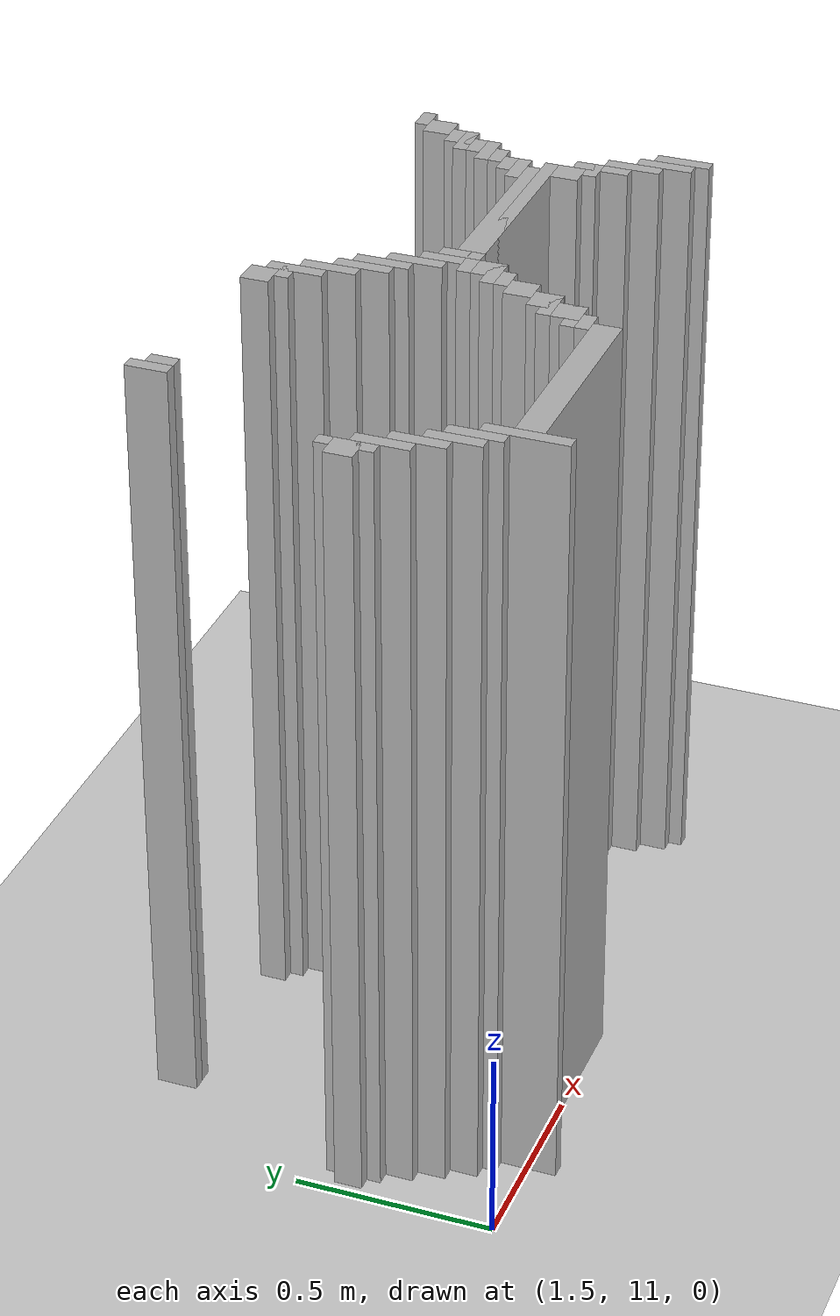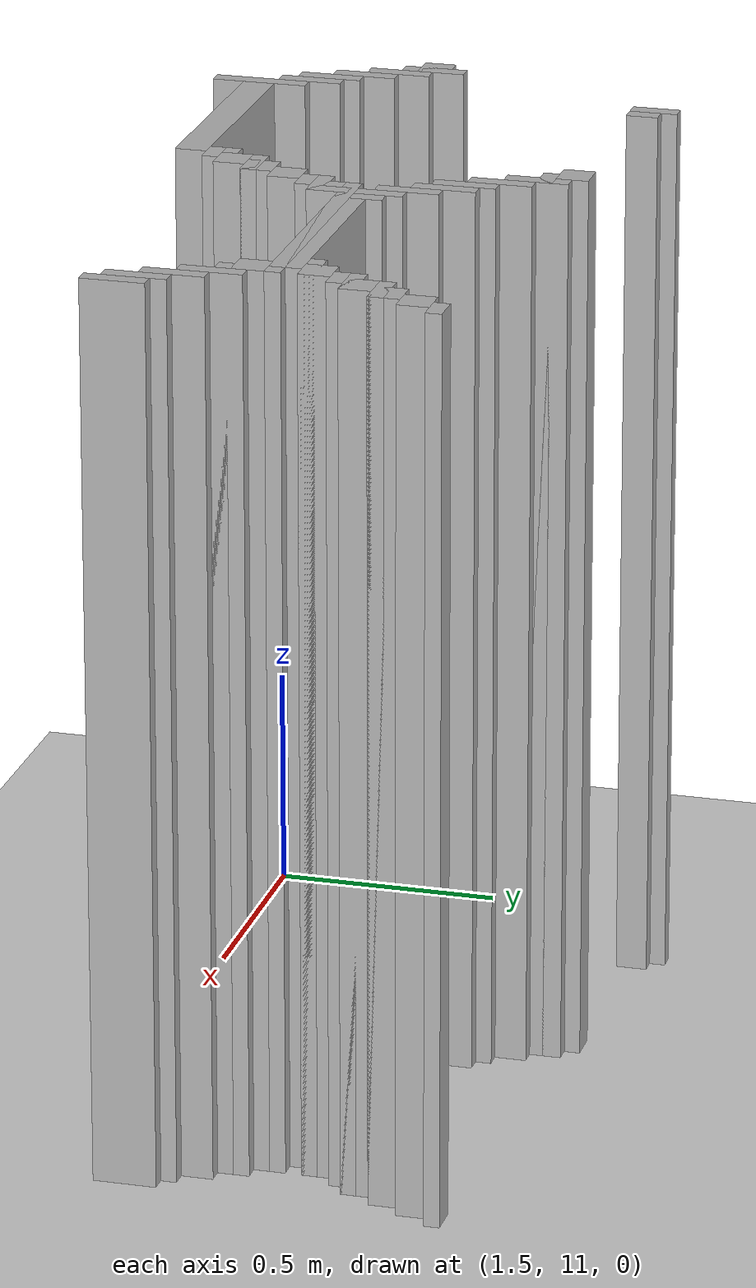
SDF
<sdf version="1.6">
 <world name="slam_world">
  <model name="ground_plane">
   <static>true</static>
   <link name="link">
    <collision name="collision">
     <geometry><plane><normal>0 0 1</normal><size>100 100</size></plane></geometry>
    </collision>
    <visual name="visual">
     <geometry><plane><normal>0 0 1</normal><size>100 100</size></plane></geometry>
     <material>
      <ambient>0.8 0.8 0.8 1</ambient>
      <diffuse>0.8 0.8 0.8 1</diffuse>
      <specular>0.8 0.8 0.8 1</specular>
     </material>
    </visual>
   </link>
  </model>
  <model name="wall_1771">
   <static>true</static>
   <pose>1.75754060324826 11.919953596287703 1.0 0 0 0</pose>
   <link name="link">
    <collision name="collision">
     <geometry><box><size>0.03480278422273782 0.10440835266821345 2.0</size></box></geometry>
    </collision>
    <visual name="visual">
     <geometry><box><size>0.03480278422273782 0.10440835266821345 2.0</size></box></geometry>
     <material><ambient>0.5 0.5 0.5 1</ambient><diffuse>0.7 0.7 0.7 1</diffuse></material>
    </visual>
   </link>
  </model>
  <model name="wall_1785">
   <static>true</static>
   <pose>1.7923433874709975 11.902552204176333 1.0 0 0 0</pose>
   <link name="link">
    <collision name="collision">
     <geometry><box><size>0.03480278422273782 0.06960556844547564 2.0</size></box></geometry>
    </collision>
    <visual name="visual">
     <geometry><box><size>0.03480278422273782 0.06960556844547564 2.0</size></box></geometry>
     <material><ambient>0.5 0.5 0.5 1</ambient><diffuse>0.7 0.7 0.7 1</diffuse></material>
    </visual>
   </link>
  </model>
  <model name="wall_1798">
   <static>true</static>
   <pose>2.262180974477958 11.867749419953595 1.0 0 0 0</pose>
   <link name="link">
    <collision name="collision">
     <geometry><box><size>0.06960556844547564 0.06960556844547564 2.0</size></box></geometry>
    </collision>
    <visual name="visual">
     <geometry><box><size>0.06960556844547564 0.06960556844547564 2.0</size></box></geometry>
     <material><ambient>0.5 0.5 0.5 1</ambient><diffuse>0.7 0.7 0.7 1</diffuse></material>
    </visual>
   </link>
  </model>
  <model name="wall_1810">
   <static>true</static>
   <pose>2.3143851508120648 11.79814385150812 1.0 0 0 0</pose>
   <link name="link">
    <collision name="collision">
     <geometry><box><size>0.03480278422273782 0.13921113689095127 2.0</size></box></geometry>
    </collision>
    <visual name="visual">
     <geometry><box><size>0.03480278422273782 0.13921113689095127 2.0</size></box></geometry>
     <material><ambient>0.5 0.5 0.5 1</ambient><diffuse>0.7 0.7 0.7 1</diffuse></material>
    </visual>
   </link>
  </model>
  <model name="wall_1823">
   <static>true</static>
   <pose>2.296983758700696 11.81554524361949 1.0 0 0 0</pose>
   <link name="link">
    <collision name="collision">
     <geometry><box><size>0.06960556844547564 0.03480278422273782 2.0</size></box></geometry>
    </collision>
    <visual name="visual">
     <geometry><box><size>0.06960556844547564 0.03480278422273782 2.0</size></box></geometry>
     <material><ambient>0.5 0.5 0.5 1</ambient><diffuse>0.7 0.7 0.7 1</diffuse></material>
    </visual>
   </link>
  </model>
  <model name="wall_1824">
   <static>true</static>
   <pose>3.201856148491879 11.81554524361949 1.0 0 0 0</pose>
   <link name="link">
    <collision name="collision">
     <geometry><box><size>0.06960556844547564 0.03480278422273782 2.0</size></box></geometry>
    </collision>
    <visual name="visual">
     <geometry><box><size>0.06960556844547564 0.03480278422273782 2.0</size></box></geometry>
     <material><ambient>0.5 0.5 0.5 1</ambient><diffuse>0.7 0.7 0.7 1</diffuse></material>
    </visual>
   </link>
  </model>
  <model name="wall_1837">
   <static>true</static>
   <pose>2.3491879350348026 11.728538283062644 1.0 0 0 0</pose>
   <link name="link">
    <collision name="collision">
     <geometry><box><size>0.03480278422273782 0.13921113689095127 2.0</size></box></geometry>
    </collision>
    <visual name="visual">
     <geometry><box><size>0.03480278422273782 0.13921113689095127 2.0</size></box></geometry>
     <material><ambient>0.5 0.5 0.5 1</ambient><diffuse>0.7 0.7 0.7 1</diffuse></material>
    </visual>
   </link>
  </model>
  <model name="wall_1838">
   <static>true</static>
   <pose>3.167053364269141 11.763341067285383 1.0 0 0 0</pose>
   <link name="link">
    <collision name="collision">
     <geometry><box><size>0.06960556844547564 0.06960556844547564 2.0</size></box></geometry>
    </collision>
    <visual name="visual">
     <geometry><box><size>0.06960556844547564 0.06960556844547564 2.0</size></box></geometry>
     <material><ambient>0.5 0.5 0.5 1</ambient><diffuse>0.7 0.7 0.7 1</diffuse></material>
    </visual>
   </link>
  </model>
  <model name="wall_1851">
   <static>true</static>
   <pose>2.3839907192575405 11.658932714617169 1.0 0 0 0</pose>
   <link name="link">
    <collision name="collision">
     <geometry><box><size>0.03480278422273782 0.13921113689095127 2.0</size></box></geometry>
    </collision>
    <visual name="visual">
     <geometry><box><size>0.03480278422273782 0.13921113689095127 2.0</size></box></geometry>
     <material><ambient>0.5 0.5 0.5 1</ambient><diffuse>0.7 0.7 0.7 1</diffuse></material>
    </visual>
   </link>
  </model>
  <model name="wall_1852">
   <static>true</static>
   <pose>3.1322505800464038 11.693735498839906 1.0 0 0 0</pose>
   <link name="link">
    <collision name="collision">
     <geometry><box><size>0.06960556844547564 0.06960556844547564 2.0</size></box></geometry>
    </collision>
    <visual name="visual">
     <geometry><box><size>0.06960556844547564 0.06960556844547564 2.0</size></box></geometry>
     <material><ambient>0.5 0.5 0.5 1</ambient><diffuse>0.7 0.7 0.7 1</diffuse></material>
    </visual>
   </link>
  </model>
  <model name="wall_1865">
   <static>true</static>
   <pose>2.4187935034802783 11.624129930394432 1.0 0 0 0</pose>
   <link name="link">
    <collision name="collision">
     <geometry><box><size>0.03480278422273782 0.13921113689095127 2.0</size></box></geometry>
    </collision>
    <visual name="visual">
     <geometry><box><size>0.03480278422273782 0.13921113689095127 2.0</size></box></geometry>
     <material><ambient>0.5 0.5 0.5 1</ambient><diffuse>0.7 0.7 0.7 1</diffuse></material>
    </visual>
   </link>
  </model>
  <model name="wall_1866">
   <static>true</static>
   <pose>3.1148491879350346 11.676334106728538 1.0 0 0 0</pose>
   <link name="link">
    <collision name="collision">
     <geometry><box><size>0.10440835266821345 0.03480278422273782 2.0</size></box></geometry>
    </collision>
    <visual name="visual">
     <geometry><box><size>0.10440835266821345 0.03480278422273782 2.0</size></box></geometry>
     <material><ambient>0.5 0.5 0.5 1</ambient><diffuse>0.7 0.7 0.7 1</diffuse></material>
    </visual>
   </link>
  </model>
  <model name="wall_1878">
   <static>true</static>
   <pose>3.097447795823666 11.624129930394432 1.0 0 0 0</pose>
   <link name="link">
    <collision name="collision">
     <geometry><box><size>0.06960556844547564 0.06960556844547564 2.0</size></box></geometry>
    </collision>
    <visual name="visual">
     <geometry><box><size>0.06960556844547564 0.06960556844547564 2.0</size></box></geometry>
     <material><ambient>0.5 0.5 0.5 1</ambient><diffuse>0.7 0.7 0.7 1</diffuse></material>
    </visual>
   </link>
  </model>
  <model name="wall_1888">
   <static>true</static>
   <pose>2.453596287703016 11.554524361948955 1.0 0 0 0</pose>
   <link name="link">
    <collision name="collision">
     <geometry><box><size>0.03480278422273782 0.13921113689095127 2.0</size></box></geometry>
    </collision>
    <visual name="visual">
     <geometry><box><size>0.03480278422273782 0.13921113689095127 2.0</size></box></geometry>
     <material><ambient>0.5 0.5 0.5 1</ambient><diffuse>0.7 0.7 0.7 1</diffuse></material>
    </visual>
   </link>
  </model>
  <model name="wall_1889">
   <static>true</static>
   <pose>3.0800464037122968 11.606728538283063 1.0 0 0 0</pose>
   <link name="link">
    <collision name="collision">
     <geometry><box><size>0.10440835266821345 0.03480278422273782 2.0</size></box></geometry>
    </collision>
    <visual name="visual">
     <geometry><box><size>0.10440835266821345 0.03480278422273782 2.0</size></box></geometry>
     <material><ambient>0.5 0.5 0.5 1</ambient><diffuse>0.7 0.7 0.7 1</diffuse></material>
    </visual>
   </link>
  </model>
  <model name="wall_1901">
   <static>true</static>
   <pose>3.062645011600928 11.571925754060324 1.0 0 0 0</pose>
   <link name="link">
    <collision name="collision">
     <geometry><box><size>0.06960556844547564 0.03480278422273782 2.0</size></box></geometry>
    </collision>
    <visual name="visual">
     <geometry><box><size>0.06960556844547564 0.03480278422273782 2.0</size></box></geometry>
     <material><ambient>0.5 0.5 0.5 1</ambient><diffuse>0.7 0.7 0.7 1</diffuse></material>
    </visual>
   </link>
  </model>
  <model name="wall_1908">
   <static>true</static>
   <pose>2.488399071925754 11.450116009280743 1.0 0 0 0</pose>
   <link name="link">
    <collision name="collision">
     <geometry><box><size>0.03480278422273782 0.2088167053364269 2.0</size></box></geometry>
    </collision>
    <visual name="visual">
     <geometry><box><size>0.03480278422273782 0.2088167053364269 2.0</size></box></geometry>
     <material><ambient>0.5 0.5 0.5 1</ambient><diffuse>0.7 0.7 0.7 1</diffuse></material>
    </visual>
   </link>
  </model>
  <model name="wall_1909">
   <static>true</static>
   <pose>3.02784222737819 11.519721577726218 1.0 0 0 0</pose>
   <link name="link">
    <collision name="collision">
     <geometry><box><size>0.06960556844547564 0.06960556844547564 2.0</size></box></geometry>
    </collision>
    <visual name="visual">
     <geometry><box><size>0.06960556844547564 0.06960556844547564 2.0</size></box></geometry>
     <material><ambient>0.5 0.5 0.5 1</ambient><diffuse>0.7 0.7 0.7 1</diffuse></material>
    </visual>
   </link>
  </model>
  <model name="wall_1921">
   <static>true</static>
   <pose>2.523201856148492 11.467517401392112 1.0 0 0 0</pose>
   <link name="link">
    <collision name="collision">
     <geometry><box><size>0.03480278422273782 0.10440835266821345 2.0</size></box></geometry>
    </collision>
    <visual name="visual">
     <geometry><box><size>0.03480278422273782 0.10440835266821345 2.0</size></box></geometry>
     <material><ambient>0.5 0.5 0.5 1</ambient><diffuse>0.7 0.7 0.7 1</diffuse></material>
    </visual>
   </link>
  </model>
  <model name="wall_1922">
   <static>true</static>
   <pose>3.010440835266821 11.502320185614849 1.0 0 0 0</pose>
   <link name="link">
    <collision name="collision">
     <geometry><box><size>0.10440835266821345 0.03480278422273782 2.0</size></box></geometry>
    </collision>
    <visual name="visual">
     <geometry><box><size>0.10440835266821345 0.03480278422273782 2.0</size></box></geometry>
     <material><ambient>0.5 0.5 0.5 1</ambient><diffuse>0.7 0.7 0.7 1</diffuse></material>
    </visual>
   </link>
  </model>
  <model name="wall_1935">
   <static>true</static>
   <pose>2.784222737819025 11.450116009280743 1.0 0 0 0</pose>
   <link name="link">
    <collision name="collision">
     <geometry><box><size>0.4872389791183295 0.06960556844547564 2.0</size></box></geometry>
    </collision>
    <visual name="visual">
     <geometry><box><size>0.4872389791183295 0.06960556844547564 2.0</size></box></geometry>
     <material><ambient>0.5 0.5 0.5 1</ambient><diffuse>0.7 0.7 0.7 1</diffuse></material>
    </visual>
   </link>
  </model>
  <model name="wall_1946">
   <static>true</static>
   <pose>1.5835266821345706 11.380510440835266 1.0 0 0 0</pose>
   <link name="link">
    <collision name="collision">
     <geometry><box><size>0.03480278422273782 0.13921113689095127 2.0</size></box></geometry>
    </collision>
    <visual name="visual">
     <geometry><box><size>0.03480278422273782 0.13921113689095127 2.0</size></box></geometry>
     <material><ambient>0.5 0.5 0.5 1</ambient><diffuse>0.7 0.7 0.7 1</diffuse></material>
    </visual>
   </link>
  </model>
  <model name="wall_1947">
   <static>true</static>
   <pose>2.7494199535962878 11.432714617169372 1.0 0 0 0</pose>
   <link name="link">
    <collision name="collision">
     <geometry><box><size>0.6264501160092807 0.03480278422273782 2.0</size></box></geometry>
    </collision>
    <visual name="visual">
     <geometry><box><size>0.6264501160092807 0.03480278422273782 2.0</size></box></geometry>
     <material><ambient>0.5 0.5 0.5 1</ambient><diffuse>0.7 0.7 0.7 1</diffuse></material>
    </visual>
   </link>
  </model>
  <model name="wall_1960">
   <static>true</static>
   <pose>1.5661252900232019 11.380510440835266 1.0 0 0 0</pose>
   <link name="link">
    <collision name="collision">
     <geometry><box><size>0.06960556844547564 0.06960556844547564 2.0</size></box></geometry>
    </collision>
    <visual name="visual">
     <geometry><box><size>0.06960556844547564 0.06960556844547564 2.0</size></box></geometry>
     <material><ambient>0.5 0.5 0.5 1</ambient><diffuse>0.7 0.7 0.7 1</diffuse></material>
    </visual>
   </link>
  </model>
  <model name="wall_1961">
   <static>true</static>
   <pose>2.470997679814385 11.380510440835266 1.0 0 0 0</pose>
   <link name="link">
    <collision name="collision">
     <geometry><box><size>0.06960556844547564 0.06960556844547564 2.0</size></box></geometry>
    </collision>
    <visual name="visual">
     <geometry><box><size>0.06960556844547564 0.06960556844547564 2.0</size></box></geometry>
     <material><ambient>0.5 0.5 0.5 1</ambient><diffuse>0.7 0.7 0.7 1</diffuse></material>
    </visual>
   </link>
  </model>
  <model name="wall_1962">
   <static>true</static>
   <pose>3.02784222737819 11.380510440835266 1.0 0 0 0</pose>
   <link name="link">
    <collision name="collision">
     <geometry><box><size>0.06960556844547564 0.06960556844547564 2.0</size></box></geometry>
    </collision>
    <visual name="visual">
     <geometry><box><size>0.06960556844547564 0.06960556844547564 2.0</size></box></geometry>
     <material><ambient>0.5 0.5 0.5 1</ambient><diffuse>0.7 0.7 0.7 1</diffuse></material>
    </visual>
   </link>
  </model>
  <model name="wall_1977">
   <static>true</static>
   <pose>1.6183294663573085 11.310904872389791 1.0 0 0 0</pose>
   <link name="link">
    <collision name="collision">
     <geometry><box><size>0.03480278422273782 0.13921113689095127 2.0</size></box></geometry>
    </collision>
    <visual name="visual">
     <geometry><box><size>0.03480278422273782 0.13921113689095127 2.0</size></box></geometry>
     <material><ambient>0.5 0.5 0.5 1</ambient><diffuse>0.7 0.7 0.7 1</diffuse></material>
    </visual>
   </link>
  </model>
  <model name="wall_1978">
   <static>true</static>
   <pose>2.453596287703016 11.363109048723897 1.0 0 0 0</pose>
   <link name="link">
    <collision name="collision">
     <geometry><box><size>0.10440835266821345 0.03480278422273782 2.0</size></box></geometry>
    </collision>
    <visual name="visual">
     <geometry><box><size>0.10440835266821345 0.03480278422273782 2.0</size></box></geometry>
     <material><ambient>0.5 0.5 0.5 1</ambient><diffuse>0.7 0.7 0.7 1</diffuse></material>
    </visual>
   </link>
  </model>
  <model name="wall_1979">
   <static>true</static>
   <pose>3.0800464037122968 11.310904872389791 1.0 0 0 0</pose>
   <link name="link">
    <collision name="collision">
     <geometry><box><size>0.03480278422273782 0.13921113689095127 2.0</size></box></geometry>
    </collision>
    <visual name="visual">
     <geometry><box><size>0.03480278422273782 0.13921113689095127 2.0</size></box></geometry>
     <material><ambient>0.5 0.5 0.5 1</ambient><diffuse>0.7 0.7 0.7 1</diffuse></material>
    </visual>
   </link>
  </model>
  <model name="wall_1993">
   <static>true</static>
   <pose>2.436194895591647 11.32830626450116 1.0 0 0 0</pose>
   <link name="link">
    <collision name="collision">
     <geometry><box><size>0.06960556844547564 0.03480278422273782 2.0</size></box></geometry>
    </collision>
    <visual name="visual">
     <geometry><box><size>0.06960556844547564 0.03480278422273782 2.0</size></box></geometry>
     <material><ambient>0.5 0.5 0.5 1</ambient><diffuse>0.7 0.7 0.7 1</diffuse></material>
    </visual>
   </link>
  </model>
  <model name="wall_1994">
   <static>true</static>
   <pose>3.062645011600928 11.32830626450116 1.0 0 0 0</pose>
   <link name="link">
    <collision name="collision">
     <geometry><box><size>0.06960556844547564 0.03480278422273782 2.0</size></box></geometry>
    </collision>
    <visual name="visual">
     <geometry><box><size>0.06960556844547564 0.03480278422273782 2.0</size></box></geometry>
     <material><ambient>0.5 0.5 0.5 1</ambient><diffuse>0.7 0.7 0.7 1</diffuse></material>
    </visual>
   </link>
  </model>
  <model name="wall_2006">
   <static>true</static>
   <pose>1.6531322505800463 11.241299303944315 1.0 0 0 0</pose>
   <link name="link">
    <collision name="collision">
     <geometry><box><size>0.03480278422273782 0.13921113689095127 2.0</size></box></geometry>
    </collision>
    <visual name="visual">
     <geometry><box><size>0.03480278422273782 0.13921113689095127 2.0</size></box></geometry>
     <material><ambient>0.5 0.5 0.5 1</ambient><diffuse>0.7 0.7 0.7 1</diffuse></material>
    </visual>
   </link>
  </model>
  <model name="wall_2007">
   <static>true</static>
   <pose>2.4013921113689096 11.276102088167052 1.0 0 0 0</pose>
   <link name="link">
    <collision name="collision">
     <geometry><box><size>0.06960556844547564 0.06960556844547564 2.0</size></box></geometry>
    </collision>
    <visual name="visual">
     <geometry><box><size>0.06960556844547564 0.06960556844547564 2.0</size></box></geometry>
     <material><ambient>0.5 0.5 0.5 1</ambient><diffuse>0.7 0.7 0.7 1</diffuse></material>
    </visual>
   </link>
  </model>
  <model name="wall_2008">
   <static>true</static>
   <pose>3.1148491879350346 11.241299303944315 1.0 0 0 0</pose>
   <link name="link">
    <collision name="collision">
     <geometry><box><size>0.03480278422273782 0.13921113689095127 2.0</size></box></geometry>
    </collision>
    <visual name="visual">
     <geometry><box><size>0.03480278422273782 0.13921113689095127 2.0</size></box></geometry>
     <material><ambient>0.5 0.5 0.5 1</ambient><diffuse>0.7 0.7 0.7 1</diffuse></material>
    </visual>
   </link>
  </model>
  <model name="wall_2023">
   <static>true</static>
   <pose>1.6879350348027842 11.17169373549884 1.0 0 0 0</pose>
   <link name="link">
    <collision name="collision">
     <geometry><box><size>0.03480278422273782 0.13921113689095127 2.0</size></box></geometry>
    </collision>
    <visual name="visual">
     <geometry><box><size>0.03480278422273782 0.13921113689095127 2.0</size></box></geometry>
     <material><ambient>0.5 0.5 0.5 1</ambient><diffuse>0.7 0.7 0.7 1</diffuse></material>
    </visual>
   </link>
  </model>
  <model name="wall_2024">
   <static>true</static>
   <pose>2.3665893271461718 11.206496519721577 1.0 0 0 0</pose>
   <link name="link">
    <collision name="collision">
     <geometry><box><size>0.06960556844547564 0.06960556844547564 2.0</size></box></geometry>
    </collision>
    <visual name="visual">
     <geometry><box><size>0.06960556844547564 0.06960556844547564 2.0</size></box></geometry>
     <material><ambient>0.5 0.5 0.5 1</ambient><diffuse>0.7 0.7 0.7 1</diffuse></material>
    </visual>
   </link>
  </model>
  <model name="wall_2025">
   <static>true</static>
   <pose>3.1496519721577725 11.17169373549884 1.0 0 0 0</pose>
   <link name="link">
    <collision name="collision">
     <geometry><box><size>0.03480278422273782 0.13921113689095127 2.0</size></box></geometry>
    </collision>
    <visual name="visual">
     <geometry><box><size>0.03480278422273782 0.13921113689095127 2.0</size></box></geometry>
     <material><ambient>0.5 0.5 0.5 1</ambient><diffuse>0.7 0.7 0.7 1</diffuse></material>
    </visual>
   </link>
  </model>
  <model name="wall_2040">
   <static>true</static>
   <pose>1.722737819025522 11.1368909512761 1.0 0 0 0</pose>
   <link name="link">
    <collision name="collision">
     <geometry><box><size>0.03480278422273782 0.13921113689095127 2.0</size></box></geometry>
    </collision>
    <visual name="visual">
     <geometry><box><size>0.03480278422273782 0.13921113689095127 2.0</size></box></geometry>
     <material><ambient>0.5 0.5 0.5 1</ambient><diffuse>0.7 0.7 0.7 1</diffuse></material>
    </visual>
   </link>
  </model>
  <model name="wall_2041">
   <static>true</static>
   <pose>2.3491879350348026 11.189095127610209 1.0 0 0 0</pose>
   <link name="link">
    <collision name="collision">
     <geometry><box><size>0.10440835266821345 0.03480278422273782 2.0</size></box></geometry>
    </collision>
    <visual name="visual">
     <geometry><box><size>0.10440835266821345 0.03480278422273782 2.0</size></box></geometry>
     <material><ambient>0.5 0.5 0.5 1</ambient><diffuse>0.7 0.7 0.7 1</diffuse></material>
    </visual>
   </link>
  </model>
  <model name="wall_2042">
   <static>true</static>
   <pose>3.1844547563805103 11.1368909512761 1.0 0 0 0</pose>
   <link name="link">
    <collision name="collision">
     <geometry><box><size>0.03480278422273782 0.13921113689095127 2.0</size></box></geometry>
    </collision>
    <visual name="visual">
     <geometry><box><size>0.03480278422273782 0.13921113689095127 2.0</size></box></geometry>
     <material><ambient>0.5 0.5 0.5 1</ambient><diffuse>0.7 0.7 0.7 1</diffuse></material>
    </visual>
   </link>
  </model>
  <model name="wall_2056">
   <static>true</static>
   <pose>2.331786542923434 11.1368909512761 1.0 0 0 0</pose>
   <link name="link">
    <collision name="collision">
     <geometry><box><size>0.06960556844547564 0.06960556844547564 2.0</size></box></geometry>
    </collision>
    <visual name="visual">
     <geometry><box><size>0.06960556844547564 0.06960556844547564 2.0</size></box></geometry>
     <material><ambient>0.5 0.5 0.5 1</ambient><diffuse>0.7 0.7 0.7 1</diffuse></material>
    </visual>
   </link>
  </model>
  <model name="wall_2066">
   <static>true</static>
   <pose>1.75754060324826 11.032482598607888 1.0 0 0 0</pose>
   <link name="link">
    <collision name="collision">
     <geometry><box><size>0.03480278422273782 0.2088167053364269 2.0</size></box></geometry>
    </collision>
    <visual name="visual">
     <geometry><box><size>0.03480278422273782 0.2088167053364269 2.0</size></box></geometry>
     <material><ambient>0.5 0.5 0.5 1</ambient><diffuse>0.7 0.7 0.7 1</diffuse></material>
    </visual>
   </link>
  </model>
  <model name="wall_2067">
   <static>true</static>
   <pose>2.3143851508120648 11.119489559164732 1.0 0 0 0</pose>
   <link name="link">
    <collision name="collision">
     <geometry><box><size>0.10440835266821345 0.03480278422273782 2.0</size></box></geometry>
    </collision>
    <visual name="visual">
     <geometry><box><size>0.10440835266821345 0.03480278422273782 2.0</size></box></geometry>
     <material><ambient>0.5 0.5 0.5 1</ambient><diffuse>0.7 0.7 0.7 1</diffuse></material>
    </visual>
   </link>
  </model>
  <model name="wall_2082">
   <static>true</static>
   <pose>2.296983758700696 11.084686774941995 1.0 0 0 0</pose>
   <link name="link">
    <collision name="collision">
     <geometry><box><size>0.06960556844547564 0.03480278422273782 2.0</size></box></geometry>
    </collision>
    <visual name="visual">
     <geometry><box><size>0.06960556844547564 0.03480278422273782 2.0</size></box></geometry>
     <material><ambient>0.5 0.5 0.5 1</ambient><diffuse>0.7 0.7 0.7 1</diffuse></material>
    </visual>
   </link>
  </model>
  <model name="wall_2091">
   <static>true</static>
   <pose>2.0359628770301623 11.032482598607888 1.0 0 0 0</pose>
   <link name="link">
    <collision name="collision">
     <geometry><box><size>0.5220417633410672 0.06960556844547564 2.0</size></box></geometry>
    </collision>
    <visual name="visual">
     <geometry><box><size>0.5220417633410672 0.06960556844547564 2.0</size></box></geometry>
     <material><ambient>0.5 0.5 0.5 1</ambient><diffuse>0.7 0.7 0.7 1</diffuse></material>
    </visual>
   </link>
  </model>
 </world>
</sdf>
